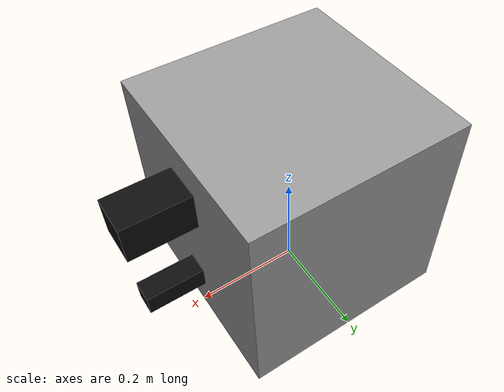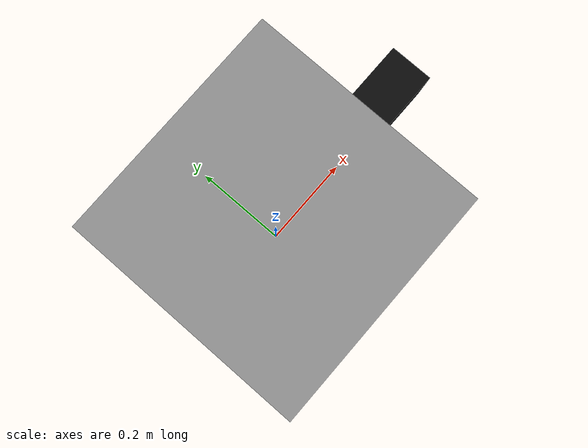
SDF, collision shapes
<?xml version="1.0" ?>
<!-- |    This document was autogenerated by xmacro4sdf from model.sdf.xmacro          | -->
<!-- |    EDITING THIS FILE BY HAND IS NOT RECOMMENDED                                 | -->
<sdf version="1.7">
	<!--include defination-->
	<!--rm22_speed_monitor_module example-->
	<model name="rm22_speed_monitor_module">
		<pose>0 0 0.2 0 0 0</pose>
		<link name="base_link">
			<inertial>
				<mass>0.4</mass>
				<inertia>
					<ixx>0.01066666666666667</ixx>
					<ixy>0</ixy>
					<ixz>0</ixz>
					<iyy>0.01066666666666667</iyy>
					<iyz>0</iyz>
					<izz>0.01066666666666667</izz>
				</inertia>
			</inertial>
			<visual name="visual">
				<geometry>
					<box>
						<size>0.4 0.4 0.4</size>
					</box>
				</geometry>
				<material>
					<ambient>0.6 0.6 0.6 1</ambient>
					<diffuse>0.6 0.6 0.6 1</diffuse>
				</material>
			</visual>
			<collision name="collision">
				<geometry>
					<box>
						<size>0.4 0.4 0.4</size>
					</box>
				</geometry>
			</collision>
		</link>
		<joint name="speed_monitor_1_joint" type="fixed">
			<pose relative_to="base_link">0.2 0 -0.1 0 0 0</pose>
			<parent>base_link</parent>
			<child>speed_monitor_1</child>
		</joint>
		<link name="speed_monitor_1">
			<pose relative_to="speed_monitor_1_joint">0 0 0 0 0 0</pose>
			<inertial>
				<pose>0.055 0 0 0 0 0</pose>
				<mass>0.1</mass>
				<inertia>
					<ixx>2.941666666666667e-05</ixx>
					<ixy>0</ixy>
					<ixz>0</ixz>
					<iyy>0.00011484166666666668</iyy>
					<iyz>0</iyz>
					<izz>0.00011624166666666668</izz>
				</inertia>
			</inertial>
			<visual name="visual">
				<geometry>
					<mesh>
						<uri>model://rm21_speed_monitor_module/meshes/speed_monitor_17mm.dae</uri>
					</mesh>
				</geometry>
				<material>
					<ambient>0.1 0.1 0.1</ambient>
					<diffuse>0.05 0.05 0.05</diffuse>
					<specular>0.6 0.6 0.6</specular>
				</material>
			</visual>
			<visual name="speed_monitor_1_light_bar_visual">
				<geometry>
					<mesh>
						<uri>model://rm21_speed_monitor_module/meshes/speed_monitor_17mm_light_bar.dae</uri>
					</mesh>
				</geometry>
				<material>
					<ambient>1.0 1.0 1.0</ambient>
					<diffuse>1.0 1.0 1.0</diffuse>
					<specular>0.5 0.5 0.5</specular>
				</material>
			</visual>
			<collision name="collision">
				<pose>0.055 0 0 0 0 0</pose>
				<geometry>
					<box>
						<size>0.11 0.043 0.041</size>
					</box>
				</geometry>
			</collision>
		</link>
		<joint name="speed_monitor_2_joint" type="fixed">
			<pose relative_to="base_link">0.2 0 0.1 0 0 0</pose>
			<parent>base_link</parent>
			<child>speed_monitor_2</child>
		</joint>
		<link name="speed_monitor_2">
			<pose relative_to="speed_monitor_2_joint">0 0 0 0 0 0</pose>
			<inertial>
				<pose>0.061 0 0 0 0 0</pose>
				<mass>0.1</mass>
				<inertia>
					<ixx>9.126666666666666e-05</ixx>
					<ixy>0</ixy>
					<ixz>0</ixz>
					<iyy>0.00016966666666666668</iyy>
					<iyz>0</iyz>
					<izz>0.00016966666666666668</izz>
				</inertia>
			</inertial>
			<visual name="visual">
				<geometry>
					<mesh>
						<uri>model://rm21_speed_monitor_module/meshes/speed_monitor_42mm.stl</uri>
					</mesh>
				</geometry>
				<material>
					<ambient>0.1 0.1 0.1</ambient>
					<diffuse>0.05 0.05 0.05</diffuse>
					<specular>0.6 0.6 0.6</specular>
				</material>
			</visual>
			<visual name="speed_monitor_2_light_bar_visual">
				<geometry>
					<mesh>
						<uri>model://rm21_speed_monitor_module/meshes/speed_monitor_42mm_light_bar.stl</uri>
					</mesh>
				</geometry>
				<material>
					<ambient>1.0 1.0 1.0</ambient>
					<diffuse>1.0 1.0 1.0</diffuse>
					<specular>0.5 0.5 0.5</specular>
				</material>
			</visual>
			<collision name="collision">
				<pose>0.061 0 0 0 0 0</pose>
				<geometry>
					<box>
						<size>0.122 0.074 0.074</size>
					</box>
				</geometry>
			</collision>
		</link>
	</model>
</sdf>
